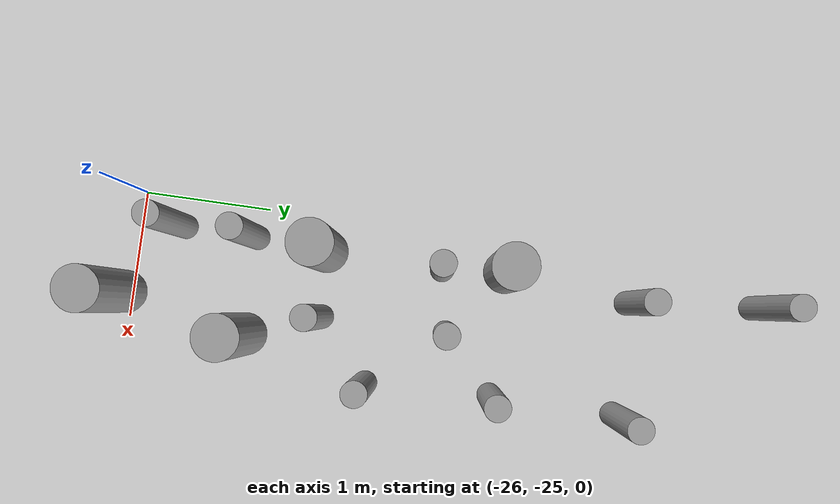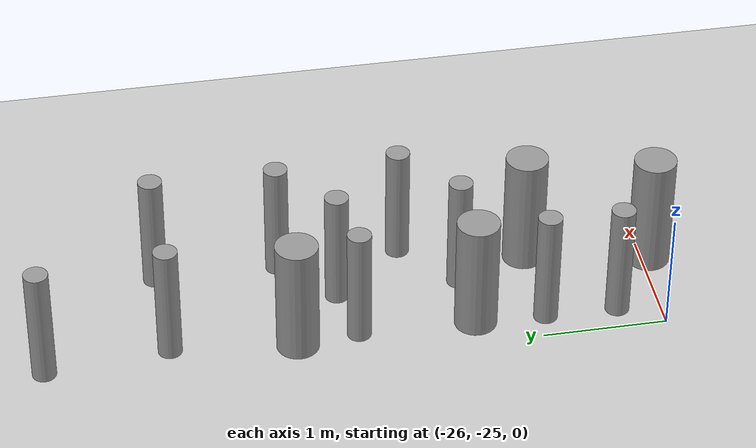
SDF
<sdf version="1.6">
 <world name="default">
  <model name="ground_plane">
   <static>1</static>
   <link name="link">
    <collision name="collision">
     <geometry><plane><normal>0 0 1</normal><size>100 100</size></plane></geometry>
     <surface><friction><ode><mu>100</mu><mu2>50</mu2></ode></friction></surface>
    </collision>
    <visual name="visual">
     <cast_shadows>0</cast_shadows>
     <geometry><plane><normal>0 0 1</normal><size>100 100</size></plane></geometry>
     <material>
      <script><uri>file://media/materials/scripts/gazebo.material</uri><name>Gazebo/Grey</name></script>
     </material>
    </visual>
   </link>
  </model>
  <model name="cyl_wall_clone_clone_1_clone_1_clone_clone_clone_clone">
   <link name="link_0">
    <pose>-2.73893 -0.366465 0 0 -0 0</pose>
    <inertial>
     <mass>0.0374993</mass>
     <inertia>
      <ixx>0.00321281</ixx>
      <ixy>0</ixy>
      <ixz>0</ixz>
      <iyy>0.00321281</iyy>
      <iyz>0</iyz>
      <izz>0.000175774</izz>
     </inertia>
    </inertial>
    <visual name="visual">
     <geometry><cylinder><radius>0.0968661</radius><length>1</length></cylinder></geometry>
     <material>
      <lighting>1</lighting>
      <script><uri>file://media/materials/scripts/gazebo.material</uri><name>Gazebo/Grey</name></script>
      <ambient>0.3 0.3 0.3 1</ambient>
      <diffuse>0.7 0.7 0.7 1</diffuse>
      <specular>0.01 0.01 0.01 1</specular>
      <emissive>0 0 0 1</emissive>
     </material>
    </visual>
    <collision name="collision">
     <geometry><cylinder><radius>0.096866</radius><length>1</length></cylinder></geometry>
     <surface>
      <friction>
       <ode><mu>1</mu><mu2>1</mu2><fdir1>0 0 0</fdir1><slip1>0</slip1><slip2>0</slip2></ode>
       <torsional>
        <coefficient>1</coefficient>
        <patch_radius>0</patch_radius>
        <surface_radius>0</surface_radius>
        <use_patch_radius>1</use_patch_radius>
        <ode><slip>0</slip></ode>
       </torsional>
      </friction>
      <bounce><restitution_coefficient>0</restitution_coefficient><threshold>1e+06</threshold></bounce>
      <contact>
       <collide_without_contact>0</collide_without_contact>
       <collide_without_contact_bitmask>1</collide_without_contact_bitmask>
       <collide_bitmask>1</collide_bitmask>
       <ode>
        <soft_cfm>0</soft_cfm>
        <soft_erp>0.2</soft_erp>
        <kp>1e+13</kp>
        <kd>1</kd>
        <max_vel>0.01</max_vel>
        <min_depth>0</min_depth>
       </ode>
       <bullet>
        <split_impulse>1</split_impulse>
        <split_impulse_penetration_threshold>-0.01</split_impulse_penetration_threshold>
        <soft_cfm>0</soft_cfm>
        <soft_erp>0.2</soft_erp>
        <kp>1e+13</kp>
        <kd>1</kd>
       </bullet>
      </contact>
     </surface>
    </collision>
   </link>
   <link name="link_0_clone">
    <pose>-1.73893 0.61877 0 0 -0 0</pose>
    <inertial>
     <mass>0.0374993</mass>
     <inertia>
      <ixx>0.00321281</ixx>
      <ixy>0</ixy>
      <ixz>0</ixz>
      <iyy>0.00321281</iyy>
      <iyz>0</iyz>
      <izz>0.000175774</izz>
     </inertia>
    </inertial>
    <visual name="visual">
     <geometry><cylinder><radius>0.0968661</radius><length>1</length></cylinder></geometry>
     <material>
      <lighting>1</lighting>
      <script><uri>file://media/materials/scripts/gazebo.material</uri><name>Gazebo/Grey</name></script>
      <ambient>0.3 0.3 0.3 1</ambient>
      <diffuse>0.7 0.7 0.7 1</diffuse>
      <specular>0.01 0.01 0.01 1</specular>
      <emissive>0 0 0 1</emissive>
      <shader type="pixel"/>
     </material>
    </visual>
    <collision name="collision">
     <geometry><cylinder><radius>0.096866</radius><length>1</length></cylinder></geometry>
     <surface>
      <friction>
       <ode><mu>1</mu><mu2>1</mu2><fdir1>0 0 0</fdir1><slip1>0</slip1><slip2>0</slip2></ode>
       <torsional>
        <coefficient>1</coefficient>
        <patch_radius>0</patch_radius>
        <surface_radius>0</surface_radius>
        <use_patch_radius>1</use_patch_radius>
        <ode><slip>0</slip></ode>
       </torsional>
      </friction>
      <bounce><restitution_coefficient>0</restitution_coefficient><threshold>1e+06</threshold></bounce>
      <contact>
       <collide_without_contact>0</collide_without_contact>
       <collide_without_contact_bitmask>1</collide_without_contact_bitmask>
       <collide_bitmask>1</collide_bitmask>
       <ode>
        <soft_cfm>0</soft_cfm>
        <soft_erp>0.2</soft_erp>
        <kp>1e+13</kp>
        <kd>1</kd>
        <max_vel>0.01</max_vel>
        <min_depth>0</min_depth>
       </ode>
       <bullet>
        <split_impulse>1</split_impulse>
        <split_impulse_penetration_threshold>-0.01</split_impulse_penetration_threshold>
        <soft_cfm>0</soft_cfm>
        <soft_erp>0.2</soft_erp>
        <kp>1e+13</kp>
        <kd>1</kd>
       </bullet>
      </contact>
     </surface>
    </collision>
   </link>
   <link name="link_0_clone_clone">
    <pose>-0.327073 0.143919 0 0 -0 0</pose>
    <inertial>
     <mass>0.0374993</mass>
     <inertia>
      <ixx>0.00321281</ixx>
      <ixy>0</ixy>
      <ixz>0</ixz>
      <iyy>0.00321281</iyy>
      <iyz>0</iyz>
      <izz>0.000175774</izz>
     </inertia>
    </inertial>
    <visual name="visual">
     <geometry><cylinder><radius>0.0968661</radius><length>1</length></cylinder></geometry>
     <material>
      <lighting>1</lighting>
      <script><uri>file://media/materials/scripts/gazebo.material</uri><name>Gazebo/Grey</name></script>
      <ambient>0.3 0.3 0.3 1</ambient>
      <diffuse>0.7 0.7 0.7 1</diffuse>
      <specular>0.01 0.01 0.01 1</specular>
      <emissive>0 0 0 1</emissive>
      <shader type="pixel"/>
     </material>
    </visual>
    <collision name="collision">
     <geometry><cylinder><radius>0.096866</radius><length>1</length></cylinder></geometry>
     <surface>
      <friction>
       <ode><mu>1</mu><mu2>1</mu2><fdir1>0 0 0</fdir1><slip1>0</slip1><slip2>0</slip2></ode>
       <torsional>
        <coefficient>1</coefficient>
        <patch_radius>0</patch_radius>
        <surface_radius>0</surface_radius>
        <use_patch_radius>1</use_patch_radius>
        <ode><slip>0</slip></ode>
       </torsional>
      </friction>
      <bounce><restitution_coefficient>0</restitution_coefficient><threshold>1e+06</threshold></bounce>
      <contact>
       <collide_without_contact>0</collide_without_contact>
       <collide_without_contact_bitmask>1</collide_without_contact_bitmask>
       <collide_bitmask>1</collide_bitmask>
       <ode>
        <soft_cfm>0</soft_cfm>
        <soft_erp>0.2</soft_erp>
        <kp>1e+13</kp>
        <kd>1</kd>
        <max_vel>0.01</max_vel>
        <min_depth>0</min_depth>
       </ode>
       <bullet>
        <split_impulse>1</split_impulse>
        <split_impulse_penetration_threshold>-0.01</split_impulse_penetration_threshold>
        <soft_cfm>0</soft_cfm>
        <soft_erp>0.2</soft_erp>
        <kp>1e+13</kp>
        <kd>1</kd>
       </bullet>
      </contact>
     </surface>
    </collision>
   </link>
   <link name="link_0_clone_clone_0">
    <pose>1.26107 -0.419359 0 0 -0 0</pose>
    <inertial>
     <mass>0.0374993</mass>
     <inertia>
      <ixx>0.00321281</ixx>
      <ixy>0</ixy>
      <ixz>0</ixz>
      <iyy>0.00321281</iyy>
      <iyz>0</iyz>
      <izz>0.000175774</izz>
     </inertia>
    </inertial>
    <visual name="visual">
     <geometry><cylinder><radius>0.0968661</radius><length>1</length></cylinder></geometry>
     <material>
      <lighting>1</lighting>
      <script><uri>file://media/materials/scripts/gazebo.material</uri><name>Gazebo/Grey</name></script>
      <ambient>0.3 0.3 0.3 1</ambient>
      <diffuse>0.7 0.7 0.7 1</diffuse>
      <specular>0.01 0.01 0.01 1</specular>
      <emissive>0 0 0 1</emissive>
      <shader type="pixel"/>
     </material>
    </visual>
    <collision name="collision">
     <geometry><cylinder><radius>0.096866</radius><length>1</length></cylinder></geometry>
     <surface>
      <friction>
       <ode><mu>1</mu><mu2>1</mu2><fdir1>0 0 0</fdir1><slip1>0</slip1><slip2>0</slip2></ode>
       <torsional>
        <coefficient>1</coefficient>
        <patch_radius>0</patch_radius>
        <surface_radius>0</surface_radius>
        <use_patch_radius>1</use_patch_radius>
        <ode><slip>0</slip></ode>
       </torsional>
      </friction>
      <bounce><restitution_coefficient>0</restitution_coefficient><threshold>1e+06</threshold></bounce>
      <contact>
       <collide_without_contact>0</collide_without_contact>
       <collide_without_contact_bitmask>1</collide_without_contact_bitmask>
       <collide_bitmask>1</collide_bitmask>
       <ode>
        <soft_cfm>0</soft_cfm>
        <soft_erp>0.2</soft_erp>
        <kp>1e+13</kp>
        <kd>1</kd>
        <max_vel>0.01</max_vel>
        <min_depth>0</min_depth>
       </ode>
       <bullet>
        <split_impulse>1</split_impulse>
        <split_impulse_penetration_threshold>-0.01</split_impulse_penetration_threshold>
        <soft_cfm>0</soft_cfm>
        <soft_erp>0.2</soft_erp>
        <kp>1e+13</kp>
        <kd>1</kd>
       </bullet>
      </contact>
     </surface>
    </collision>
   </link>
   <link name="link_0_clone_clone_1">
    <pose>-1.73893 -0.277168 0 0 -0 0</pose>
    <inertial>
     <mass>0.0374993</mass>
     <inertia>
      <ixx>0.00321281</ixx>
      <ixy>0</ixy>
      <ixz>0</ixz>
      <iyy>0.00321281</iyy>
      <iyz>0</iyz>
      <izz>0.000175774</izz>
     </inertia>
    </inertial>
    <visual name="visual">
     <geometry><cylinder><radius>0.0968661</radius><length>1</length></cylinder></geometry>
     <material>
      <lighting>1</lighting>
      <script><uri>file://media/materials/scripts/gazebo.material</uri><name>Gazebo/Grey</name></script>
      <ambient>0.3 0.3 0.3 1</ambient>
      <diffuse>0.7 0.7 0.7 1</diffuse>
      <specular>0.01 0.01 0.01 1</specular>
      <emissive>0 0 0 1</emissive>
      <shader type="pixel"/>
     </material>
    </visual>
    <collision name="collision">
     <geometry><cylinder><radius>0.096866</radius><length>1</length></cylinder></geometry>
     <surface>
      <friction>
       <ode><mu>1</mu><mu2>1</mu2><fdir1>0 0 0</fdir1><slip1>0</slip1><slip2>0</slip2></ode>
       <torsional>
        <coefficient>1</coefficient>
        <patch_radius>0</patch_radius>
        <surface_radius>0</surface_radius>
        <use_patch_radius>1</use_patch_radius>
        <ode><slip>0</slip></ode>
       </torsional>
      </friction>
      <bounce><restitution_coefficient>0</restitution_coefficient><threshold>1e+06</threshold></bounce>
      <contact>
       <collide_without_contact>0</collide_without_contact>
       <collide_without_contact_bitmask>1</collide_without_contact_bitmask>
       <collide_bitmask>1</collide_bitmask>
       <ode>
        <soft_cfm>0</soft_cfm>
        <soft_erp>0.2</soft_erp>
        <kp>1e+13</kp>
        <kd>1</kd>
        <max_vel>0.01</max_vel>
        <min_depth>0</min_depth>
       </ode>
       <bullet>
        <split_impulse>1</split_impulse>
        <split_impulse_penetration_threshold>-0.01</split_impulse_penetration_threshold>
        <soft_cfm>0</soft_cfm>
        <soft_erp>0.2</soft_erp>
        <kp>1e+13</kp>
        <kd>1</kd>
       </bullet>
      </contact>
     </surface>
    </collision>
   </link>
   <link name="link_0_clone_clone_2">
    <pose>-0.738934 0.593961 0 0 -0 0</pose>
    <inertial>
     <mass>0.0374993</mass>
     <inertia>
      <ixx>0.00321281</ixx>
      <ixy>0</ixy>
      <ixz>0</ixz>
      <iyy>0.00321281</iyy>
      <iyz>0</iyz>
      <izz>0.000175774</izz>
     </inertia>
    </inertial>
    <visual name="visual">
     <geometry><cylinder><radius>0.0968661</radius><length>1</length></cylinder></geometry>
     <material>
      <lighting>1</lighting>
      <script><uri>file://media/materials/scripts/gazebo.material</uri><name>Gazebo/Grey</name></script>
      <ambient>0.3 0.3 0.3 1</ambient>
      <diffuse>0.7 0.7 0.7 1</diffuse>
      <specular>0.01 0.01 0.01 1</specular>
      <emissive>0 0 0 1</emissive>
      <shader type="pixel"/>
     </material>
    </visual>
    <collision name="collision">
     <geometry><cylinder><radius>0.096866</radius><length>1</length></cylinder></geometry>
     <surface>
      <friction>
       <ode><mu>1</mu><mu2>1</mu2><fdir1>0 0 0</fdir1><slip1>0</slip1><slip2>0</slip2></ode>
       <torsional>
        <coefficient>1</coefficient>
        <patch_radius>0</patch_radius>
        <surface_radius>0</surface_radius>
        <use_patch_radius>1</use_patch_radius>
        <ode><slip>0</slip></ode>
       </torsional>
      </friction>
      <bounce><restitution_coefficient>0</restitution_coefficient><threshold>1e+06</threshold></bounce>
      <contact>
       <collide_without_contact>0</collide_without_contact>
       <collide_without_contact_bitmask>1</collide_without_contact_bitmask>
       <collide_bitmask>1</collide_bitmask>
       <ode>
        <soft_cfm>0</soft_cfm>
        <soft_erp>0.2</soft_erp>
        <kp>1e+13</kp>
        <kd>1</kd>
        <max_vel>0.01</max_vel>
        <min_depth>0</min_depth>
       </ode>
       <bullet>
        <split_impulse>1</split_impulse>
        <split_impulse_penetration_threshold>-0.01</split_impulse_penetration_threshold>
        <soft_cfm>0</soft_cfm>
        <soft_erp>0.2</soft_erp>
        <kp>1e+13</kp>
        <kd>1</kd>
       </bullet>
      </contact>
     </surface>
    </collision>
   </link>
   <link name="link_0_clone_clone_3">
    <pose>0.261066 0.624849 0 0 -0 0</pose>
    <inertial>
     <mass>0.0374993</mass>
     <inertia>
      <ixx>0.00321281</ixx>
      <ixy>0</ixy>
      <ixz>0</ixz>
      <iyy>0.00321281</iyy>
      <iyz>0</iyz>
      <izz>0.000175774</izz>
     </inertia>
    </inertial>
    <visual name="visual">
     <geometry><cylinder><radius>0.0968661</radius><length>1</length></cylinder></geometry>
     <material>
      <lighting>1</lighting>
      <script><uri>file://media/materials/scripts/gazebo.material</uri><name>Gazebo/Grey</name></script>
      <ambient>0.3 0.3 0.3 1</ambient>
      <diffuse>0.7 0.7 0.7 1</diffuse>
      <specular>0.01 0.01 0.01 1</specular>
      <emissive>0 0 0 1</emissive>
      <shader type="pixel"/>
     </material>
    </visual>
    <collision name="collision">
     <geometry><cylinder><radius>0.096866</radius><length>1</length></cylinder></geometry>
     <surface>
      <friction>
       <ode><mu>1</mu><mu2>1</mu2><fdir1>0 0 0</fdir1><slip1>0</slip1><slip2>0</slip2></ode>
       <torsional>
        <coefficient>1</coefficient>
        <patch_radius>0</patch_radius>
        <surface_radius>0</surface_radius>
        <use_patch_radius>1</use_patch_radius>
        <ode><slip>0</slip></ode>
       </torsional>
      </friction>
      <bounce><restitution_coefficient>0</restitution_coefficient><threshold>1e+06</threshold></bounce>
      <contact>
       <collide_without_contact>0</collide_without_contact>
       <collide_without_contact_bitmask>1</collide_without_contact_bitmask>
       <collide_bitmask>1</collide_bitmask>
       <ode>
        <soft_cfm>0</soft_cfm>
        <soft_erp>0.2</soft_erp>
        <kp>1e+13</kp>
        <kd>1</kd>
        <max_vel>0.01</max_vel>
        <min_depth>0</min_depth>
       </ode>
       <bullet>
        <split_impulse>1</split_impulse>
        <split_impulse_penetration_threshold>-0.01</split_impulse_penetration_threshold>
        <soft_cfm>0</soft_cfm>
        <soft_erp>0.2</soft_erp>
        <kp>1e+13</kp>
        <kd>1</kd>
       </bullet>
      </contact>
     </surface>
    </collision>
   </link>
   <link name="link_0_clone_clone_4">
    <pose>-0.239049 -0.353105 0 0 -0 0</pose>
    <inertial>
     <mass>0.0374993</mass>
     <inertia>
      <ixx>0.00321281</ixx>
      <ixy>0</ixy>
      <ixz>0</ixz>
      <iyy>0.00321281</iyy>
      <iyz>0</iyz>
      <izz>0.000175774</izz>
     </inertia>
    </inertial>
    <visual name="visual">
     <geometry><cylinder><radius>0.0968661</radius><length>1</length></cylinder></geometry>
     <material>
      <lighting>1</lighting>
      <script><uri>file://media/materials/scripts/gazebo.material</uri><name>Gazebo/Grey</name></script>
      <ambient>0.3 0.3 0.3 1</ambient>
      <diffuse>0.7 0.7 0.7 1</diffuse>
      <specular>0.01 0.01 0.01 1</specular>
      <emissive>0 0 0 1</emissive>
      <shader type="pixel"/>
     </material>
    </visual>
    <collision name="collision">
     <geometry><cylinder><radius>0.096866</radius><length>1</length></cylinder></geometry>
     <surface>
      <friction>
       <ode><mu>1</mu><mu2>1</mu2><fdir1>0 0 0</fdir1><slip1>0</slip1><slip2>0</slip2></ode>
       <torsional>
        <coefficient>1</coefficient>
        <patch_radius>0</patch_radius>
        <surface_radius>0</surface_radius>
        <use_patch_radius>1</use_patch_radius>
        <ode><slip>0</slip></ode>
       </torsional>
      </friction>
      <bounce><restitution_coefficient>0</restitution_coefficient><threshold>1e+06</threshold></bounce>
      <contact>
       <collide_without_contact>0</collide_without_contact>
       <collide_without_contact_bitmask>1</collide_without_contact_bitmask>
       <collide_bitmask>1</collide_bitmask>
       <ode>
        <soft_cfm>0</soft_cfm>
        <soft_erp>0.2</soft_erp>
        <kp>1e+13</kp>
        <kd>1</kd>
        <max_vel>0.01</max_vel>
        <min_depth>0</min_depth>
       </ode>
       <bullet>
        <split_impulse>1</split_impulse>
        <split_impulse_penetration_threshold>-0.01</split_impulse_penetration_threshold>
        <soft_cfm>0</soft_cfm>
        <soft_erp>0.2</soft_erp>
        <kp>1e+13</kp>
        <kd>1</kd>
       </bullet>
      </contact>
     </surface>
    </collision>
   </link>
   <link name="link_0_clone_clone_5">
    <pose>0.672792 0.143919 0 0 -0 0</pose>
    <inertial>
     <mass>0.0374993</mass>
     <inertia>
      <ixx>0.00321281</ixx>
      <ixy>0</ixy>
      <ixz>0</ixz>
      <iyy>0.00321281</iyy>
      <iyz>0</iyz>
      <izz>0.000175774</izz>
     </inertia>
    </inertial>
    <visual name="visual">
     <geometry><cylinder><radius>0.0968661</radius><length>1</length></cylinder></geometry>
     <material>
      <lighting>1</lighting>
      <script><uri>file://media/materials/scripts/gazebo.material</uri><name>Gazebo/Grey</name></script>
      <ambient>0.3 0.3 0.3 1</ambient>
      <diffuse>0.7 0.7 0.7 1</diffuse>
      <specular>0.01 0.01 0.01 1</specular>
      <emissive>0 0 0 1</emissive>
      <shader type="pixel"/>
     </material>
    </visual>
    <collision name="collision">
     <geometry><cylinder><radius>0.096866</radius><length>1</length></cylinder></geometry>
     <surface>
      <friction>
       <ode><mu>1</mu><mu2>1</mu2><fdir1>0 0 0</fdir1><slip1>0</slip1><slip2>0</slip2></ode>
       <torsional>
        <coefficient>1</coefficient>
        <patch_radius>0</patch_radius>
        <surface_radius>0</surface_radius>
        <use_patch_radius>1</use_patch_radius>
        <ode><slip>0</slip></ode>
       </torsional>
      </friction>
      <bounce><restitution_coefficient>0</restitution_coefficient><threshold>1e+06</threshold></bounce>
      <contact>
       <collide_without_contact>0</collide_without_contact>
       <collide_without_contact_bitmask>1</collide_without_contact_bitmask>
       <collide_bitmask>1</collide_bitmask>
       <ode>
        <soft_cfm>0</soft_cfm>
        <soft_erp>0.2</soft_erp>
        <kp>1e+13</kp>
        <kd>1</kd>
        <max_vel>0.01</max_vel>
        <min_depth>0</min_depth>
       </ode>
       <bullet>
        <split_impulse>1</split_impulse>
        <split_impulse_penetration_threshold>-0.01</split_impulse_penetration_threshold>
        <soft_cfm>0</soft_cfm>
        <soft_erp>0.2</soft_erp>
        <kp>1e+13</kp>
        <kd>1</kd>
       </bullet>
      </contact>
     </surface>
    </collision>
   </link>
   <link name="link_0_clone_clone_6">
    <pose>1.84596 -0.433423 0 0 -0 0</pose>
    <inertial>
     <mass>0.0374993</mass>
     <inertia>
      <ixx>0.00321281</ixx>
      <ixy>0</ixy>
      <ixz>0</ixz>
      <iyy>0.00321281</iyy>
      <iyz>0</iyz>
      <izz>0.000175774</izz>
     </inertia>
    </inertial>
    <visual name="visual">
     <geometry><cylinder><radius>0.0968661</radius><length>1</length></cylinder></geometry>
     <material>
      <lighting>1</lighting>
      <script><uri>file://media/materials/scripts/gazebo.material</uri><name>Gazebo/Grey</name></script>
      <ambient>0.3 0.3 0.3 1</ambient>
      <diffuse>0.7 0.7 0.7 1</diffuse>
      <specular>0.01 0.01 0.01 1</specular>
      <emissive>0 0 0 1</emissive>
      <shader type="pixel"/>
     </material>
    </visual>
    <collision name="collision">
     <geometry><cylinder><radius>0.096866</radius><length>1</length></cylinder></geometry>
     <surface>
      <friction>
       <ode><mu>1</mu><mu2>1</mu2><fdir1>0 0 0</fdir1><slip1>0</slip1><slip2>0</slip2></ode>
       <torsional>
        <coefficient>1</coefficient>
        <patch_radius>0</patch_radius>
        <surface_radius>0</surface_radius>
        <use_patch_radius>1</use_patch_radius>
        <ode><slip>0</slip></ode>
       </torsional>
      </friction>
      <bounce><restitution_coefficient>0</restitution_coefficient><threshold>1e+06</threshold></bounce>
      <contact>
       <collide_without_contact>0</collide_without_contact>
       <collide_without_contact_bitmask>1</collide_without_contact_bitmask>
       <collide_bitmask>1</collide_bitmask>
       <ode>
        <soft_cfm>0</soft_cfm>
        <soft_erp>0.2</soft_erp>
        <kp>1e+13</kp>
        <kd>1</kd>
        <max_vel>0.01</max_vel>
        <min_depth>0</min_depth>
       </ode>
       <bullet>
        <split_impulse>1</split_impulse>
        <split_impulse_penetration_threshold>-0.01</split_impulse_penetration_threshold>
        <soft_cfm>0</soft_cfm>
        <soft_erp>0.2</soft_erp>
        <kp>1e+13</kp>
        <kd>1</kd>
       </bullet>
      </contact>
     </surface>
    </collision>
   </link>
   <link name="link_1">
    <pose>-0.738934 -0.397931 0 0 -0 0</pose>
    <inertial>
     <mass>0.117398</mass>
     <inertia>
      <ixx>0.0106445</ixx>
      <ixy>0</ixy>
      <ixz>0</ixz>
      <iyy>0.0106445</iyy>
      <iyz>0</iyz>
      <izz>0.00172278</izz>
     </inertia>
    </inertial>
    <visual name="visual">
     <geometry><cylinder><radius>0.171317</radius><length>1</length></cylinder></geometry>
     <material>
      <lighting>1</lighting>
      <script><uri>file://media/materials/scripts/gazebo.material</uri><name>Gazebo/Grey</name></script>
      <ambient>0.3 0.3 0.3 1</ambient>
      <diffuse>0.7 0.7 0.7 1</diffuse>
      <specular>0.01 0.01 0.01 1</specular>
      <emissive>0 0 0 1</emissive>
     </material>
    </visual>
    <collision name="collision">
     <geometry><cylinder><radius>0.171317</radius><length>1</length></cylinder></geometry>
     <surface>
      <friction>
       <ode><mu>1</mu><mu2>1</mu2><fdir1>0 0 0</fdir1><slip1>0</slip1><slip2>0</slip2></ode>
       <torsional>
        <coefficient>1</coefficient>
        <patch_radius>0</patch_radius>
        <surface_radius>0</surface_radius>
        <use_patch_radius>1</use_patch_radius>
        <ode><slip>0</slip></ode>
       </torsional>
      </friction>
      <bounce><restitution_coefficient>0</restitution_coefficient><threshold>1e+06</threshold></bounce>
      <contact>
       <collide_without_contact>0</collide_without_contact>
       <collide_without_contact_bitmask>1</collide_without_contact_bitmask>
       <collide_bitmask>1</collide_bitmask>
       <ode>
        <soft_cfm>0</soft_cfm>
        <soft_erp>0.2</soft_erp>
        <kp>1e+13</kp>
        <kd>1</kd>
        <max_vel>0.01</max_vel>
        <min_depth>0</min_depth>
       </ode>
       <bullet>
        <split_impulse>1</split_impulse>
        <split_impulse_penetration_threshold>-0.01</split_impulse_penetration_threshold>
        <soft_cfm>0</soft_cfm>
        <soft_erp>0.2</soft_erp>
        <kp>1e+13</kp>
        <kd>1</kd>
       </bullet>
      </contact>
     </surface>
    </collision>
   </link>
   <link name="link_1_clone">
    <pose>0.697784 -0.380861 0 0 -0 0</pose>
    <inertial>
     <mass>0.117398</mass>
     <inertia>
      <ixx>0.0106445</ixx>
      <ixy>0</ixy>
      <ixz>0</ixz>
      <iyy>0.0106445</iyy>
      <iyz>0</iyz>
      <izz>0.00172278</izz>
     </inertia>
    </inertial>
    <visual name="visual">
     <geometry><cylinder><radius>0.171317</radius><length>1</length></cylinder></geometry>
     <material>
      <lighting>1</lighting>
      <script><uri>file://media/materials/scripts/gazebo.material</uri><name>Gazebo/Grey</name></script>
      <ambient>0.3 0.3 0.3 1</ambient>
      <diffuse>0.7 0.7 0.7 1</diffuse>
      <specular>0.01 0.01 0.01 1</specular>
      <emissive>0 0 0 1</emissive>
      <shader type="pixel"/>
     </material>
    </visual>
    <collision name="collision">
     <geometry><cylinder><radius>0.171317</radius><length>1</length></cylinder></geometry>
     <surface>
      <friction>
       <ode><mu>1</mu><mu2>1</mu2><fdir1>0 0 0</fdir1><slip1>0</slip1><slip2>0</slip2></ode>
       <torsional>
        <coefficient>1</coefficient>
        <patch_radius>0</patch_radius>
        <surface_radius>0</surface_radius>
        <use_patch_radius>1</use_patch_radius>
        <ode><slip>0</slip></ode>
       </torsional>
      </friction>
      <bounce><restitution_coefficient>0</restitution_coefficient><threshold>1e+06</threshold></bounce>
      <contact>
       <collide_without_contact>0</collide_without_contact>
       <collide_without_contact_bitmask>1</collide_without_contact_bitmask>
       <collide_bitmask>1</collide_bitmask>
       <ode>
        <soft_cfm>0</soft_cfm>
        <soft_erp>0.2</soft_erp>
        <kp>1e+13</kp>
        <kd>1</kd>
        <max_vel>0.01</max_vel>
        <min_depth>0</min_depth>
       </ode>
       <bullet>
        <split_impulse>1</split_impulse>
        <split_impulse_penetration_threshold>-0.01</split_impulse_penetration_threshold>
        <soft_cfm>0</soft_cfm>
        <soft_erp>0.2</soft_erp>
        <kp>1e+13</kp>
        <kd>1</kd>
       </bullet>
      </contact>
     </surface>
    </collision>
   </link>
   <link name="link_1_clone_0">
    <pose>1.26107 0.358974 0 0 -0 0</pose>
    <inertial>
     <mass>0.117398</mass>
     <inertia>
      <ixx>0.0106445</ixx>
      <ixy>0</ixy>
      <ixz>0</ixz>
      <iyy>0.0106445</iyy>
      <iyz>0</iyz>
      <izz>0.00172278</izz>
     </inertia>
    </inertial>
    <visual name="visual">
     <geometry><cylinder><radius>0.171317</radius><length>1</length></cylinder></geometry>
     <material>
      <lighting>1</lighting>
      <script><uri>file://media/materials/scripts/gazebo.material</uri><name>Gazebo/Grey</name></script>
      <ambient>0.3 0.3 0.3 1</ambient>
      <diffuse>0.7 0.7 0.7 1</diffuse>
      <specular>0.01 0.01 0.01 1</specular>
      <emissive>0 0 0 1</emissive>
      <shader type="pixel"/>
     </material>
    </visual>
    <collision name="collision">
     <geometry><cylinder><radius>0.171317</radius><length>1</length></cylinder></geometry>
     <surface>
      <friction>
       <ode><mu>1</mu><mu2>1</mu2><fdir1>0 0 0</fdir1><slip1>0</slip1><slip2>0</slip2></ode>
       <torsional>
        <coefficient>1</coefficient>
        <patch_radius>0</patch_radius>
        <surface_radius>0</surface_radius>
        <use_patch_radius>1</use_patch_radius>
        <ode><slip>0</slip></ode>
       </torsional>
      </friction>
      <bounce><restitution_coefficient>0</restitution_coefficient><threshold>1e+06</threshold></bounce>
      <contact>
       <collide_without_contact>0</collide_without_contact>
       <collide_without_contact_bitmask>1</collide_without_contact_bitmask>
       <collide_bitmask>1</collide_bitmask>
       <ode>
        <soft_cfm>0</soft_cfm>
        <soft_erp>0.2</soft_erp>
        <kp>1e+13</kp>
        <kd>1</kd>
        <max_vel>0.01</max_vel>
        <min_depth>0</min_depth>
       </ode>
       <bullet>
        <split_impulse>1</split_impulse>
        <split_impulse_penetration_threshold>-0.01</split_impulse_penetration_threshold>
        <soft_cfm>0</soft_cfm>
        <soft_erp>0.2</soft_erp>
        <kp>1e+13</kp>
        <kd>1</kd>
       </bullet>
      </contact>
     </surface>
    </collision>
   </link>
   <link name="link_1_clone_1">
    <pose>2.26107 0.143919 0 0 -0 0</pose>
    <inertial>
     <mass>0.117398</mass>
     <inertia>
      <ixx>0.0106445</ixx>
      <ixy>0</ixy>
      <ixz>0</ixz>
      <iyy>0.0106445</iyy>
      <iyz>0</iyz>
      <izz>0.00172278</izz>
     </inertia>
    </inertial>
    <visual name="visual">
     <geometry><cylinder><radius>0.171317</radius><length>1</length></cylinder></geometry>
     <material>
      <lighting>1</lighting>
      <script><uri>file://media/materials/scripts/gazebo.material</uri><name>Gazebo/Grey</name></script>
      <ambient>0.3 0.3 0.3 1</ambient>
      <diffuse>0.7 0.7 0.7 1</diffuse>
      <specular>0.01 0.01 0.01 1</specular>
      <emissive>0 0 0 1</emissive>
      <shader type="pixel"/>
     </material>
    </visual>
    <collision name="collision">
     <geometry><cylinder><radius>0.171317</radius><length>1</length></cylinder></geometry>
     <surface>
      <friction>
       <ode><mu>1</mu><mu2>1</mu2><fdir1>0 0 0</fdir1><slip1>0</slip1><slip2>0</slip2></ode>
       <torsional>
        <coefficient>1</coefficient>
        <patch_radius>0</patch_radius>
        <surface_radius>0</surface_radius>
        <use_patch_radius>1</use_patch_radius>
        <ode><slip>0</slip></ode>
       </torsional>
      </friction>
      <bounce><restitution_coefficient>0</restitution_coefficient><threshold>1e+06</threshold></bounce>
      <contact>
       <collide_without_contact>0</collide_without_contact>
       <collide_without_contact_bitmask>1</collide_without_contact_bitmask>
       <collide_bitmask>1</collide_bitmask>
       <ode>
        <soft_cfm>0</soft_cfm>
        <soft_erp>0.2</soft_erp>
        <kp>1e+13</kp>
        <kd>1</kd>
        <max_vel>0.01</max_vel>
        <min_depth>0</min_depth>
       </ode>
       <bullet>
        <split_impulse>1</split_impulse>
        <split_impulse_penetration_threshold>-0.01</split_impulse_penetration_threshold>
        <soft_cfm>0</soft_cfm>
        <soft_erp>0.2</soft_erp>
        <kp>1e+13</kp>
        <kd>1</kd>
       </bullet>
      </contact>
     </surface>
    </collision>
   </link>
   <static>1</static>
   <pose>-25.361 -22.8002 0.5 0 0 -1.55814</pose>
  </model>
 </world>
</sdf>
